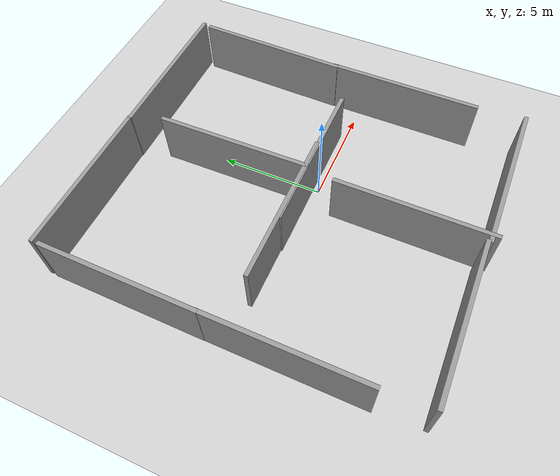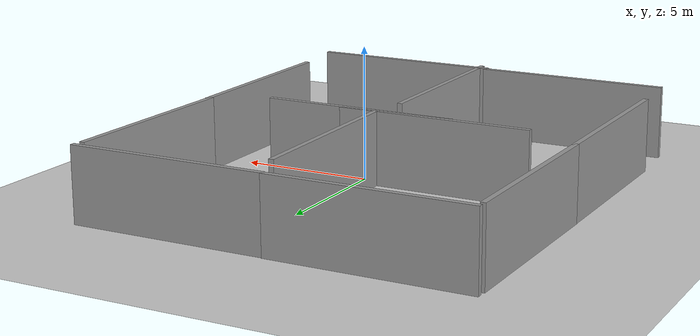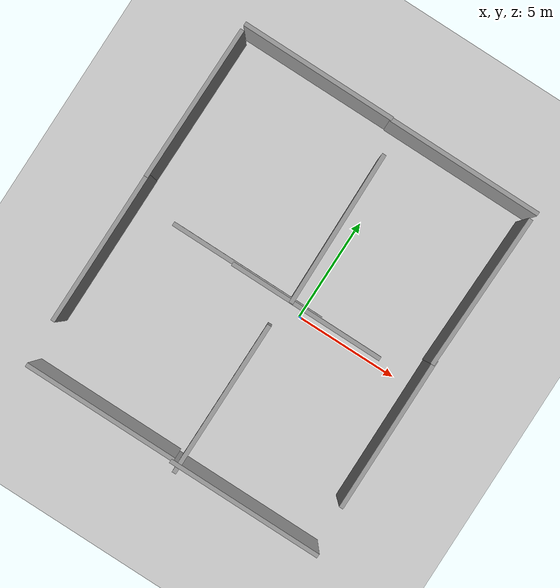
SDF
<sdf version="1.4">
 <world name="default">
  <light name="sun" type="directional">
   <pose>0 0 10 0 -0 0</pose>
   <diffuse>0.8 0.8 0.8 1</diffuse>
   <specular>0.2 0.2 0.2 1</specular>
   <attenuation>
    <range>1000</range>
    <constant>0.9</constant>
    <linear>0.01</linear>
    <quadratic>0.001</quadratic>
   </attenuation>
   <direction>-0.5 0.1 -0.9</direction>
  </light>
  <model name="ground_plane">
   <static>1</static>
   <link name="link">
    <collision name="collision">
     <geometry><plane><normal>0 0 1</normal><size>100 100</size></plane></geometry>
     <surface><friction><ode><mu>100</mu><mu2>50</mu2></ode></friction></surface>
    </collision>
    <visual name="visual">
     <cast_shadows>0</cast_shadows>
     <geometry><plane><normal>0 0 1</normal><size>100 100</size></plane></geometry>
     <material>
      <script><uri>file://media/materials/scripts/gazebo.material</uri><name>Gazebo/Grey</name></script>
     </material>
    </visual>
    <velocity_decay><linear>0</linear><angular>0</angular></velocity_decay>
   </link>
  </model>
  <physics type="ode">
   <max_step_size>0.001</max_step_size>
   <real_time_factor>1</real_time_factor>
   <real_time_update_rate>1000</real_time_update_rate>
   <gravity>0 0 -9.8</gravity>
  </physics>
  <scene><ambient>0.4 0.4 0.4 1</ambient><background>0.7 0.7 0.7 1</background><shadows>1</shadows></scene>
  <spherical_coordinates>
   <surface_model>EARTH_WGS84</surface_model>
   <latitude_deg>0</latitude_deg>
   <longitude_deg>0</longitude_deg>
   <elevation>0</elevation>
   <heading_deg>0</heading_deg>
  </spherical_coordinates>
  <model name="grey_wall">
   <static>1</static>
   <link name="link">
    <pose>0 0 1.4 0 -0 0</pose>
    <collision name="collision"><geometry><box><size>7.5 0.2 2.8</size></box></geometry></collision>
    <visual name="visual">
     <cast_shadows>0</cast_shadows>
     <geometry><box><size>7.5 0.2 2.8</size></box></geometry>
     <material>
      <script>
       <uri>model://grey_wall/materials/scripts</uri>
       <uri>model://grey_wall/materials/textures</uri>
       <name>vrc/grey_wall</name>
      </script>
     </material>
    </visual>
    <velocity_decay><linear>0</linear><angular>0</angular></velocity_decay>
   </link>
   <pose>-5.07219 9.2624 0 0 -0 0</pose>
  </model>
  <model name="grey_wall_0">
   <static>1</static>
   <link name="link">
    <pose>0 0 1.4 0 -0 0</pose>
    <collision name="collision"><geometry><box><size>7.5 0.2 2.8</size></box></geometry></collision>
    <visual name="visual">
     <cast_shadows>0</cast_shadows>
     <geometry><box><size>7.5 0.2 2.8</size></box></geometry>
     <material>
      <script>
       <uri>model://grey_wall/materials/scripts</uri>
       <uri>model://grey_wall/materials/textures</uri>
       <name>vrc/grey_wall</name>
      </script>
     </material>
    </visual>
    <velocity_decay><linear>0</linear><angular>0</angular></velocity_decay>
   </link>
   <pose>2.35203 9.23135 0 0 -0 0</pose>
  </model>
  <model name="grey_wall_1">
   <static>1</static>
   <link name="link">
    <pose>0 0 1.4 0 -0 0</pose>
    <collision name="collision"><geometry><box><size>7.5 0.2 2.8</size></box></geometry></collision>
    <visual name="visual">
     <cast_shadows>0</cast_shadows>
     <geometry><box><size>7.5 0.2 2.8</size></box></geometry>
     <material>
      <script>
       <uri>model://grey_wall/materials/scripts</uri>
       <uri>model://grey_wall/materials/textures</uri>
       <name>vrc/grey_wall</name>
      </script>
     </material>
    </visual>
    <velocity_decay><linear>0</linear><angular>0</angular></velocity_decay>
   </link>
   <pose>-8.78913 5.23947 0 0 0 -1.57841</pose>
  </model>
  <model name="grey_wall_2">
   <static>1</static>
   <link name="link">
    <pose>0 0 1.4 0 -0 0</pose>
    <collision name="collision"><geometry><box><size>7.5 0.2 2.8</size></box></geometry></collision>
    <visual name="visual">
     <cast_shadows>0</cast_shadows>
     <geometry><box><size>7.5 0.2 2.8</size></box></geometry>
     <material>
      <script>
       <uri>model://grey_wall/materials/scripts</uri>
       <uri>model://grey_wall/materials/textures</uri>
       <name>vrc/grey_wall</name>
      </script>
     </material>
    </visual>
    <velocity_decay><linear>0</linear><angular>0</angular></velocity_decay>
   </link>
   <pose>-0.742894 4.0626 -0 0 0 -1.55776</pose>
  </model>
  <model name="grey_wall_3">
   <static>1</static>
   <link name="link">
    <pose>0 0 1.4 0 -0 0</pose>
    <collision name="collision"><geometry><box><size>7.5 0.2 2.8</size></box></geometry></collision>
    <visual name="visual">
     <cast_shadows>0</cast_shadows>
     <geometry><box><size>7.5 0.2 2.8</size></box></geometry>
     <material>
      <script>
       <uri>model://grey_wall/materials/scripts</uri>
       <uri>model://grey_wall/materials/textures</uri>
       <name>vrc/grey_wall</name>
      </script>
     </material>
    </visual>
    <velocity_decay><linear>0</linear><angular>0</angular></velocity_decay>
   </link>
   <pose>-8.81049 -2.08989 0 0 0 -1.57166</pose>
  </model>
  <model name="grey_wall_4">
   <static>1</static>
   <link name="link">
    <pose>0 0 1.4 0 -0 0</pose>
    <collision name="collision"><geometry><box><size>7.5 0.2 2.8</size></box></geometry></collision>
    <visual name="visual">
     <cast_shadows>0</cast_shadows>
     <geometry><box><size>7.5 0.2 2.8</size></box></geometry>
     <material>
      <script>
       <uri>model://grey_wall/materials/scripts</uri>
       <uri>model://grey_wall/materials/textures</uri>
       <name>vrc/grey_wall</name>
      </script>
     </material>
    </visual>
    <velocity_decay><linear>0</linear><angular>0</angular></velocity_decay>
   </link>
   <pose>5.87559 5.13964 0 0 0 -1.59383</pose>
  </model>
  <model name="grey_wall_5">
   <static>1</static>
   <link name="link">
    <pose>0 0 1.4 0 -0 0</pose>
    <collision name="collision"><geometry><box><size>7.5 0.2 2.8</size></box></geometry></collision>
    <visual name="visual">
     <cast_shadows>0</cast_shadows>
     <geometry><box><size>7.5 0.2 2.8</size></box></geometry>
     <material>
      <script>
       <uri>model://grey_wall/materials/scripts</uri>
       <uri>model://grey_wall/materials/textures</uri>
       <name>vrc/grey_wall</name>
      </script>
     </material>
    </visual>
    <velocity_decay><linear>0</linear><angular>0</angular></velocity_decay>
   </link>
   <pose>5.83176 -2.09978 0 0 0 -1.56945</pose>
  </model>
  <model name="grey_wall_6">
   <static>1</static>
   <link name="link">
    <pose>0 0 1.4 0 -0 0</pose>
    <collision name="collision"><geometry><box><size>7.5 0.2 2.8</size></box></geometry></collision>
    <visual name="visual">
     <cast_shadows>0</cast_shadows>
     <geometry><box><size>7.5 0.2 2.8</size></box></geometry>
     <material>
      <script>
       <uri>model://grey_wall/materials/scripts</uri>
       <uri>model://grey_wall/materials/textures</uri>
       <name>vrc/grey_wall</name>
      </script>
     </material>
    </visual>
    <velocity_decay><linear>0</linear><angular>0</angular></velocity_decay>
   </link>
   <pose>2.38508 -8.10625 0 0 -0 0</pose>
  </model>
  <model name="grey_wall_7">
   <static>1</static>
   <link name="link">
    <pose>0 0 1.4 0 -0 0</pose>
    <collision name="collision"><geometry><box><size>7.5 0.2 2.8</size></box></geometry></collision>
    <visual name="visual">
     <cast_shadows>0</cast_shadows>
     <geometry><box><size>7.5 0.2 2.8</size></box></geometry>
     <material>
      <script>
       <uri>model://grey_wall/materials/scripts</uri>
       <uri>model://grey_wall/materials/textures</uri>
       <name>vrc/grey_wall</name>
      </script>
     </material>
    </visual>
    <velocity_decay><linear>0</linear><angular>0</angular></velocity_decay>
   </link>
   <pose>-0.953609 -4.72038 0 0 0 -1.57098</pose>
  </model>
  <model name="grey_wall_8">
   <static>1</static>
   <link name="link">
    <pose>0 0 1.4 0 -0 0</pose>
    <collision name="collision"><geometry><box><size>7.5 0.2 2.8</size></box></geometry></collision>
    <visual name="visual">
     <cast_shadows>0</cast_shadows>
     <geometry><box><size>7.5 0.2 2.8</size></box></geometry>
     <material>
      <script>
       <uri>model://grey_wall/materials/scripts</uri>
       <uri>model://grey_wall/materials/textures</uri>
       <name>vrc/grey_wall</name>
      </script>
     </material>
    </visual>
    <velocity_decay><linear>0</linear><angular>0</angular></velocity_decay>
   </link>
   <pose>0.041255 0.386721 0 0 -0 0</pose>
  </model>
  <model name="grey_wall_9">
   <static>1</static>
   <link name="link">
    <pose>0 0 1.4 0 -0 0</pose>
    <collision name="collision"><geometry><box><size>7.5 0.2 2.8</size></box></geometry></collision>
    <visual name="visual">
     <cast_shadows>0</cast_shadows>
     <geometry><box><size>7.5 0.2 2.8</size></box></geometry>
     <material>
      <script>
       <uri>model://grey_wall/materials/scripts</uri>
       <uri>model://grey_wall/materials/textures</uri>
       <name>vrc/grey_wall</name>
      </script>
     </material>
    </visual>
    <velocity_decay><linear>0</linear><angular>0</angular></velocity_decay>
   </link>
   <pose>-5 -8 0 0 -0 0</pose>
  </model>
  <model name="grey_wall_10">
   <static>1</static>
   <link name="link">
    <pose>0 0 1.4 0 -0 0</pose>
    <collision name="collision"><geometry><box><size>7.5 0.2 2.8</size></box></geometry></collision>
    <visual name="visual">
     <cast_shadows>0</cast_shadows>
     <geometry><box><size>7.5 0.2 2.8</size></box></geometry>
     <material>
      <script>
       <uri>model://grey_wall/materials/scripts</uri>
       <uri>model://grey_wall/materials/textures</uri>
       <name>vrc/grey_wall</name>
      </script>
     </material>
    </visual>
    <velocity_decay><linear>0</linear><angular>0</angular></velocity_decay>
   </link>
   <pose>-3 0.450112 0 0 -0 0</pose>
  </model>
 </world>
</sdf>
